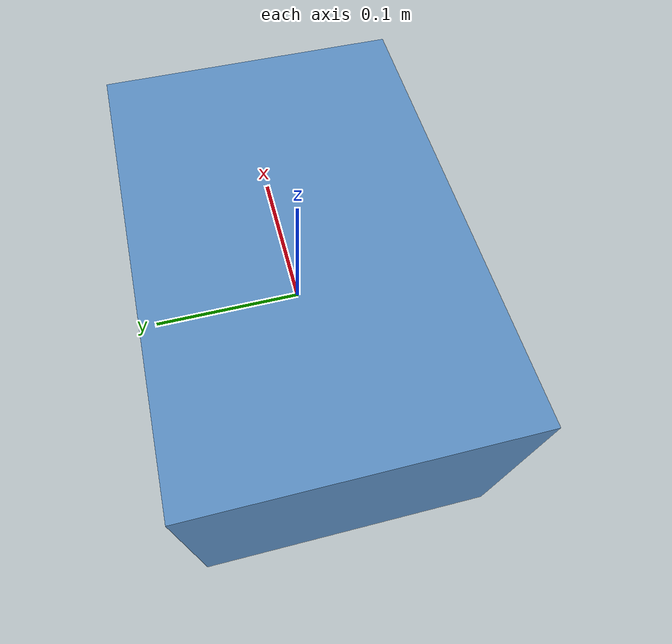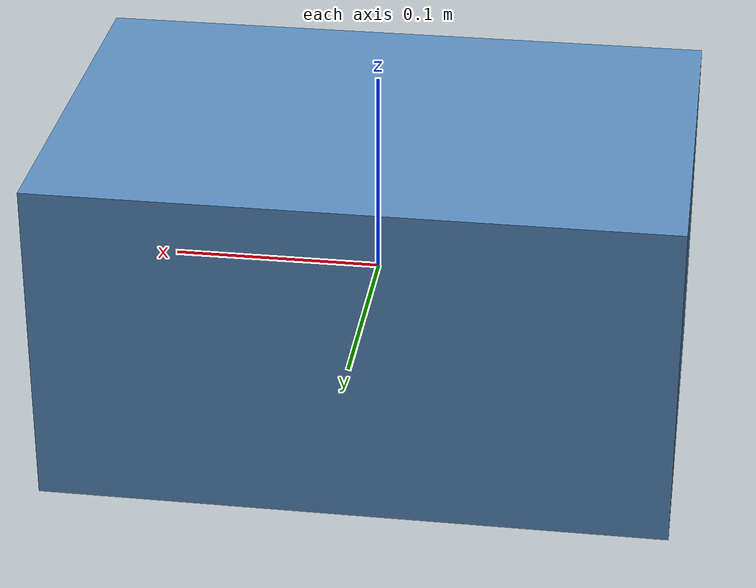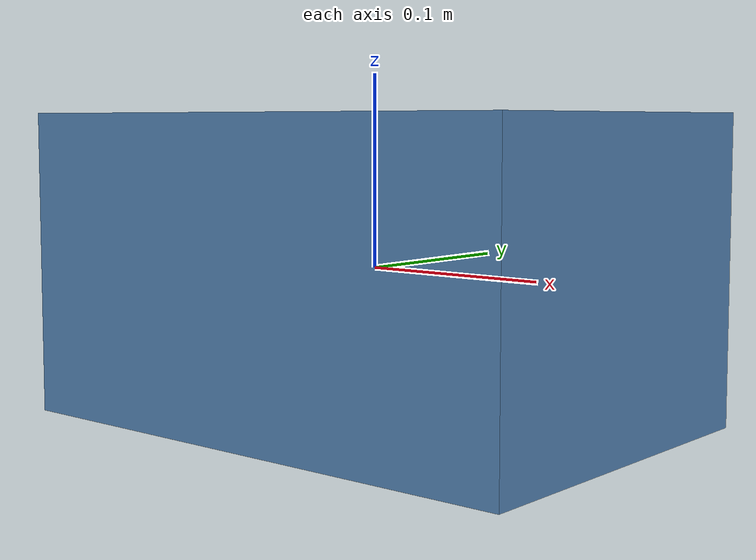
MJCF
<mujoco model="free-flight">
  <compiler angle="radian"/>
  <option gravity="0 0 0" timestep="0.001" integrator="RK4">
    <flag energy="enable"/>
  </option>

  <worldbody>
    <body name="box" pos="0 0 0">
      <freejoint name="free"/>
      <inertial pos="0 0 0" mass="2.0" diaginertia="0.05 0.03 0.02"/>
      <geom name="body" type="box" size="0.15 0.1 0.08"
            contype="0" conaffinity="0" rgba="0.35 0.55 0.75 1"/>
    </body>
  </worldbody>

  <sensor>
    <subtreeangmom name="angmom" body="box"/>
  </sensor>
</mujoco>
